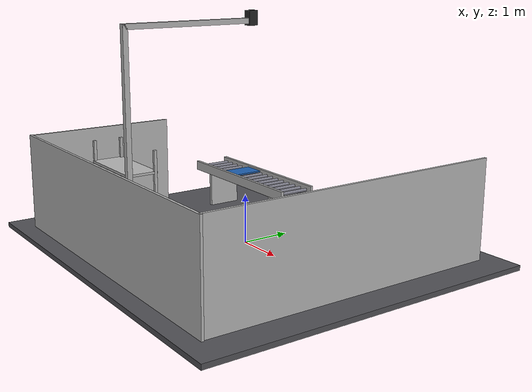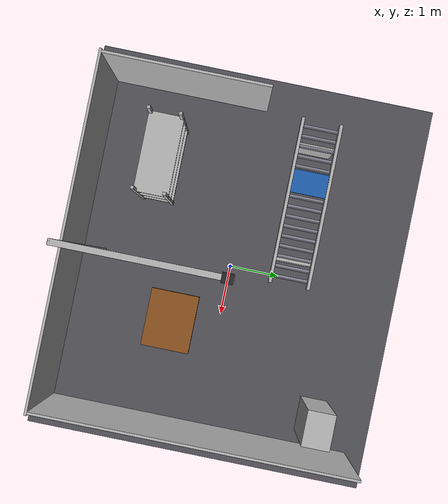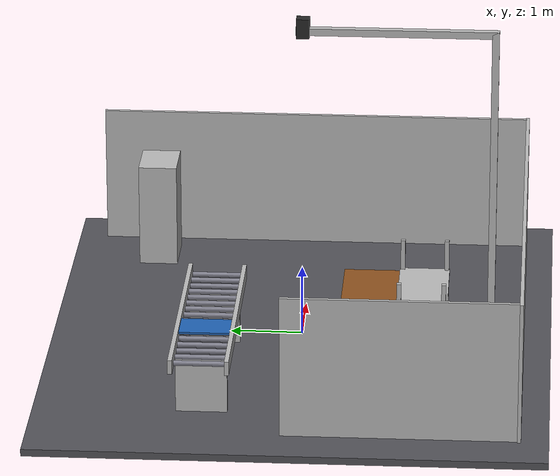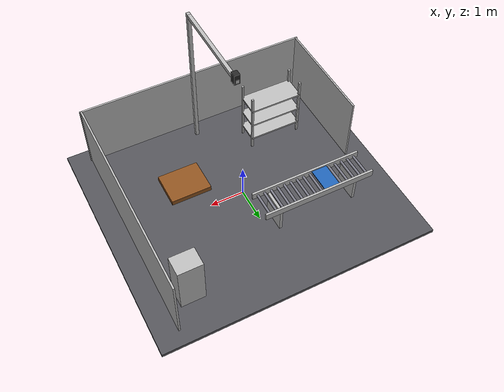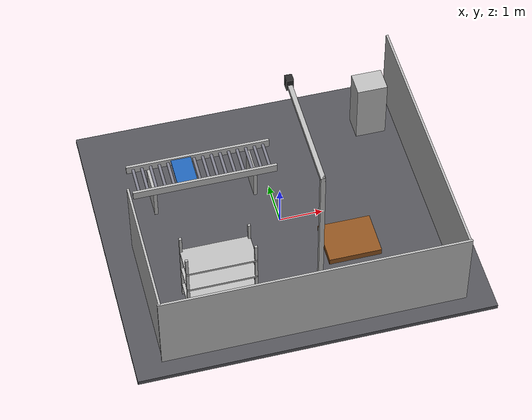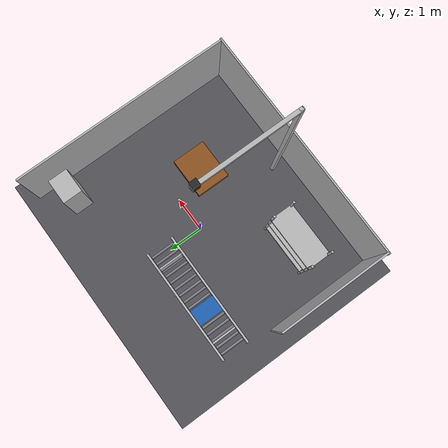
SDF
<?xml version="1.0"?>
<sdf version="1.8">
  <world name="ahead_workcell_v2">
    <plugin filename="ignition-gazebo-physics-system" name="ignition::gazebo::systems::Physics"/>
    <plugin filename="ignition-gazebo-user-commands-system" name="ignition::gazebo::systems::UserCommands"/>
    <plugin filename="ignition-gazebo-scene-broadcaster-system" name="ignition::gazebo::systems::SceneBroadcaster"/>
    <plugin filename="ignition-gazebo-sensors-system" name="ignition::gazebo::systems::Sensors"><render_engine>ogre2</render_engine></plugin>
    <gravity>0 0 -9.80665</gravity>
    <physics name="default_physics" type="ignored"><max_step_size>0.001</max_step_size><real_time_factor>1.0</real_time_factor></physics>
    <light type="directional" name="sun"><pose>0 0 8 0 0 0</pose><diffuse>0.8 0.8 0.8 1</diffuse><direction>-0.4 0.3 -1</direction></light>

    <model name="floor"><static>true</static><link name="floor_link">
      <collision name="collision"><pose>0 0 -0.05 0 0 0</pose><geometry><box><size>8 7 0.10</size></box></geometry></collision>
      <visual name="visual"><pose>0 0 -0.05 0 0 0</pose><geometry><box><size>8 7 0.10</size></box></geometry><material><ambient>0.22 0.22 0.23 1</ambient><diffuse>0.32 0.32 0.34 1</diffuse></material></visual>
    </link></model>

    <model name="conveyor_main"><static>true</static><link name="conveyor_link">
      <collision name="collision">
        <pose>-1.50 1.20 0.75 0 0 0</pose>
        <geometry>
          <box><size>3.20 0.80 0.20</size></box>
        </geometry>
        <surface>
          <friction>
            <ode>
              <mu>0.7</mu>
              <mu2>150</mu2>
              <fdir1>0 1 0</fdir1>
            </ode>
          </friction>
        </surface>
      </collision>
      <visual name="left_rail"><pose>-1.50 0.82 0.86 0 0 0</pose><geometry><box><size>3.30 0.06 0.20</size></box></geometry></visual>
      <visual name="right_rail"><pose>-1.50 1.58 0.86 0 0 0</pose><geometry><box><size>3.30 0.06 0.20</size></box></geometry></visual>
      <visual name="roller_00"><pose>-3.00 1.20 0.86 1.57079632679 0 0</pose><geometry><cylinder><radius>0.035</radius><length>0.68</length></cylinder></geometry><material><ambient>0.35 0.35 0.38 1</ambient><diffuse>0.50 0.50 0.55 1</diffuse></material></visual>
        <visual name="roller_01"><pose>-2.80 1.20 0.86 1.57079632679 0 0</pose><geometry><cylinder><radius>0.035</radius><length>0.68</length></cylinder></geometry><material><ambient>0.35 0.35 0.38 1</ambient><diffuse>0.50 0.50 0.55 1</diffuse></material></visual>
        <visual name="roller_02"><pose>-2.60 1.20 0.86 1.57079632679 0 0</pose><geometry><cylinder><radius>0.035</radius><length>0.68</length></cylinder></geometry><material><ambient>0.35 0.35 0.38 1</ambient><diffuse>0.50 0.50 0.55 1</diffuse></material></visual>
        <visual name="roller_03"><pose>-2.40 1.20 0.86 1.57079632679 0 0</pose><geometry><cylinder><radius>0.035</radius><length>0.68</length></cylinder></geometry><material><ambient>0.35 0.35 0.38 1</ambient><diffuse>0.50 0.50 0.55 1</diffuse></material></visual>
        <visual name="roller_04"><pose>-2.20 1.20 0.86 1.57079632679 0 0</pose><geometry><cylinder><radius>0.035</radius><length>0.68</length></cylinder></geometry><material><ambient>0.35 0.35 0.38 1</ambient><diffuse>0.50 0.50 0.55 1</diffuse></material></visual>
        <visual name="roller_05"><pose>-2.00 1.20 0.86 1.57079632679 0 0</pose><geometry><cylinder><radius>0.035</radius><length>0.68</length></cylinder></geometry><material><ambient>0.35 0.35 0.38 1</ambient><diffuse>0.50 0.50 0.55 1</diffuse></material></visual>
        <visual name="roller_06"><pose>-1.80 1.20 0.86 1.57079632679 0 0</pose><geometry><cylinder><radius>0.035</radius><length>0.68</length></cylinder></geometry><material><ambient>0.35 0.35 0.38 1</ambient><diffuse>0.50 0.50 0.55 1</diffuse></material></visual>
        <visual name="roller_07"><pose>-1.60 1.20 0.86 1.57079632679 0 0</pose><geometry><cylinder><radius>0.035</radius><length>0.68</length></cylinder></geometry><material><ambient>0.35 0.35 0.38 1</ambient><diffuse>0.50 0.50 0.55 1</diffuse></material></visual>
        <visual name="roller_08"><pose>-1.40 1.20 0.86 1.57079632679 0 0</pose><geometry><cylinder><radius>0.035</radius><length>0.68</length></cylinder></geometry><material><ambient>0.35 0.35 0.38 1</ambient><diffuse>0.50 0.50 0.55 1</diffuse></material></visual>
        <visual name="roller_09"><pose>-1.20 1.20 0.86 1.57079632679 0 0</pose><geometry><cylinder><radius>0.035</radius><length>0.68</length></cylinder></geometry><material><ambient>0.35 0.35 0.38 1</ambient><diffuse>0.50 0.50 0.55 1</diffuse></material></visual>
        <visual name="roller_10"><pose>-1.00 1.20 0.86 1.57079632679 0 0</pose><geometry><cylinder><radius>0.035</radius><length>0.68</length></cylinder></geometry><material><ambient>0.35 0.35 0.38 1</ambient><diffuse>0.50 0.50 0.55 1</diffuse></material></visual>
        <visual name="roller_11"><pose>-0.80 1.20 0.86 1.57079632679 0 0</pose><geometry><cylinder><radius>0.035</radius><length>0.68</length></cylinder></geometry><material><ambient>0.35 0.35 0.38 1</ambient><diffuse>0.50 0.50 0.55 1</diffuse></material></visual>
        <visual name="roller_12"><pose>-0.60 1.20 0.86 1.57079632679 0 0</pose><geometry><cylinder><radius>0.035</radius><length>0.68</length></cylinder></geometry><material><ambient>0.35 0.35 0.38 1</ambient><diffuse>0.50 0.50 0.55 1</diffuse></material></visual>
        <visual name="roller_13"><pose>-0.40 1.20 0.86 1.57079632679 0 0</pose><geometry><cylinder><radius>0.035</radius><length>0.68</length></cylinder></geometry><material><ambient>0.35 0.35 0.38 1</ambient><diffuse>0.50 0.50 0.55 1</diffuse></material></visual>
        <visual name="roller_14"><pose>-0.20 1.20 0.86 1.57079632679 0 0</pose><geometry><cylinder><radius>0.035</radius><length>0.68</length></cylinder></geometry><material><ambient>0.35 0.35 0.38 1</ambient><diffuse>0.50 0.50 0.55 1</diffuse></material></visual>
        <visual name="roller_15"><pose>0.00 1.20 0.86 1.57079632679 0 0</pose><geometry><cylinder><radius>0.035</radius><length>0.68</length></cylinder></geometry><material><ambient>0.35 0.35 0.38 1</ambient><diffuse>0.50 0.50 0.55 1</diffuse></material></visual>
      <visual name="leg_a"><pose>-2.65 1.20 0.38 0 0 0</pose><geometry><box><size>0.08 0.70 0.75</size></box></geometry></visual>
      <visual name="leg_b"><pose>-0.35 1.20 0.38 0 0 0</pose><geometry><box><size>0.08 0.70 0.75</size></box></geometry></visual>
    </link>

    <plugin filename="libignition-gazebo-track-controller-system.so"
            name="gz::sim::systems::TrackController">
      <link>conveyor_link</link>
    </plugin>
    </model>

    <model name="inline_scale"><static>true</static><link name="scale_link"><visual name="platform"><pose>-1.90 1.20 0.905 0 0 0</pose><geometry><box><size>0.46 0.72 0.03</size></box></geometry><material><ambient>0.10 0.25 0.45 1</ambient><diffuse>0.12 0.38 0.70 1</diffuse></material></visual></link></model>

    <model name="pallet_main"><static>true</static><pose>1.35 -1.00 0 0 0 0</pose><link name="pallet_link">
      <collision name="collision"><pose>0 0 0.075 0 0 0</pose><geometry><box><size>1.20 1.00 0.15</size></box></geometry></collision>
      <visual name="deck"><pose>0 0 0.075 0 0 0</pose><geometry><box><size>1.20 1.00 0.15</size></box></geometry><material><ambient>0.35 0.20 0.08 1</ambient><diffuse>0.55 0.32 0.12 1</diffuse></material></visual>
    </link></model>

    <model name="buffer_rack"><static>true</static><pose>-1.80 -1.75 0 0 0 0</pose><link name="rack_link">
      <collision name="rack_envelope"><pose>0 0 0.95 0 0 0</pose><geometry><box><size>1.60 0.70 1.90</size></box></geometry></collision>
      <visual name="post_1"><pose>-0.75 -0.30 0.95 0 0 0</pose><geometry><box><size>0.06 0.06 1.90</size></box></geometry></visual>
      <visual name="post_2"><pose>0.75 -0.30 0.95 0 0 0</pose><geometry><box><size>0.06 0.06 1.90</size></box></geometry></visual>
      <visual name="post_3"><pose>-0.75 0.30 0.95 0 0 0</pose><geometry><box><size>0.06 0.06 1.90</size></box></geometry></visual>
      <visual name="post_4"><pose>0.75 0.30 0.95 0 0 0</pose><geometry><box><size>0.06 0.06 1.90</size></box></geometry></visual>
      <visual name="shelf_1"><pose>0 0 0.35 0 0 0</pose><geometry><box><size>1.55 0.68 0.05</size></box></geometry></visual>
      <visual name="shelf_2"><pose>0 0 0.90 0 0 0</pose><geometry><box><size>1.55 0.68 0.05</size></box></geometry></visual>
      <visual name="shelf_3"><pose>0 0 1.45 0 0 0</pose><geometry><box><size>1.55 0.68 0.05</size></box></geometry></visual>
    </link></model>

    <model name="camera_mast"><static>true</static><link name="mast_link">
      <visual name="post"><pose>0.20 -2.65 2.25 0 0 0</pose><geometry><box><size>0.10 0.10 4.50</size></box></geometry></visual>
      <visual name="arm"><pose>0.20 -1.30 4.45 0 0 0</pose><geometry><box><size>0.10 2.80 0.10</size></box></geometry></visual>
    </link></model>

    <model name="camera_top_view"><static>true</static><pose>0.20 0.00 4.50 0 1.57079632679 0</pose><link name="camera_2d">
      <visual name="housing"><geometry><box><size>0.28 0.18 0.16</size></box></geometry><material><ambient>0.08 0.08 0.08 1</ambient><diffuse>0.15 0.15 0.15 1</diffuse></material></visual>
      <sensor name="top_view_sensor" type="camera"><always_on>true</always_on><update_rate>15</update_rate><topic>/pac/top_camera/image</topic><camera><horizontal_fov>1.40</horizontal_fov><image><width>1280</width><height>720</height><format>R8G8B8</format></image><clip><near>0.10</near><far>12.0</far></clip></camera></sensor>
    </link></model>

    <model name="safety_fence"><static>true</static><link name="fence_link">
      <visual name="back"><pose>0 -3.10 1.00 0 0 0</pose><geometry><box><size>6.80 0.05 2.00</size></box></geometry></visual>
      <visual name="right"><pose>3.35 0 1.00 0 0 0</pose><geometry><box><size>0.05 6.20 2.00</size></box></geometry></visual>
      <visual name="left_back"><pose>-3.35 -1.50 1.00 0 0 0</pose><geometry><box><size>0.05 3.20 2.00</size></box></geometry></visual>
    </link></model>

    <model name="controller_cabinet"><static>true</static><pose>2.70 2.25 0 0 0 0</pose><link name="cabinet_link">
      <collision name="collision"><pose>0 0 0.75 0 0 0</pose><geometry><box><size>0.70 0.55 1.50</size></box></geometry></collision>
      <visual name="visual"><pose>0 0 0.75 0 0 0</pose><geometry><box><size>0.70 0.55 1.50</size></box></geometry></visual>
    </link></model>

    <!-- HDP160-31 is spawned separately only after verified description is available. -->
  </world>
</sdf>
